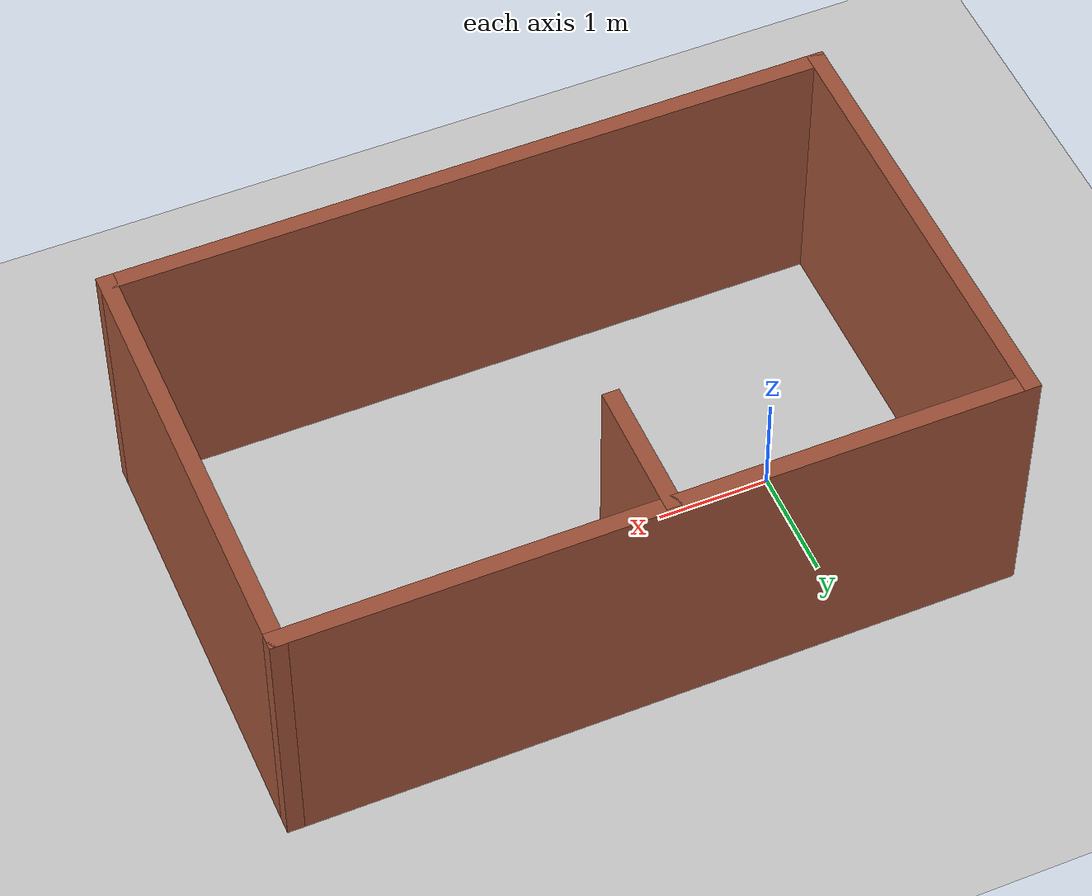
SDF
<?xml version="1.0" ?>
<!-- newworld.world 에서 convert_world 로 변환한 Gazebo Sim(Fortress) 월드 -->
<sdf version="1.7">
  <world name="default">

    <plugin filename="ignition-gazebo-physics-system"
            name="ignition::gazebo::systems::Physics"/>
    <plugin filename="ignition-gazebo-user-commands-system"
            name="ignition::gazebo::systems::UserCommands"/>
    <plugin filename="ignition-gazebo-scene-broadcaster-system"
            name="ignition::gazebo::systems::SceneBroadcaster"/>
    <!-- gpu_lidar 용. WSL2 에서는 ogre2 가 죽는 경우가 많아 ogre 사용 -->
    <plugin filename="ignition-gazebo-sensors-system"
            name="ignition::gazebo::systems::Sensors">
      <render_engine>ogre</render_engine>
    </plugin>
    <plugin filename="ignition-gazebo-imu-system"
            name="ignition::gazebo::systems::Imu"/>

    <physics name="1ms" type="ode">
      <max_step_size>0.001</max_step_size>
      <real_time_factor>1.0</real_time_factor>
    </physics>

    <scene>
      <ambient>0.4 0.4 0.4 1</ambient>
      <background>0.7 0.7 0.7 1</background>
      <shadows>false</shadows>
    </scene>

    <light name="sun" type="directional">
      <cast_shadows>true</cast_shadows>
      <pose>0 0 10 0 0 0</pose>
      <diffuse>0.8 0.8 0.8 1</diffuse>
      <specular>0.2 0.2 0.2 1</specular>
      <direction>-0.5 0.1 -0.9</direction>
    </light>

    <model name="ground_plane">
      <static>true</static>
      <link name="link">
        <collision name="collision">
          <geometry><plane><normal>0 0 1</normal><size>100 100</size></plane></geometry>
          <surface><friction><ode><mu>100</mu><mu2>50</mu2></ode></friction></surface>
        </collision>
        <visual name="visual">
          <geometry><plane><normal>0 0 1</normal><size>100 100</size></plane></geometry>
          <material><ambient>0.8 0.8 0.8 1</ambient><diffuse>0.8 0.8 0.8 1</diffuse></material>
        </visual>
      </link>
    </model>

    <model name="Untitled">
      <static>true</static>
      <link name="Wall_0">
        <pose>-1.40353 -0.277567 0 0 0 -1.5708</pose>
        <collision name="collision_0"><pose>0 0 1.25 0 -0 0</pose><geometry><box><size>4 0.15 2.5</size></box></geometry></collision>
        <visual name="visual_0"><pose>0 0 1.25 0 -0 0</pose><geometry><box><size>4 0.15 2.5</size></box></geometry><material><ambient>0.62 0.32 0.22 1</ambient><diffuse>0.62 0.32 0.22 1</diffuse></material></visual>
      </link>
      <link name="Wall_1">
        <pose>1.77147 -2.20257 0 0 -0 0</pose>
        <collision name="collision_0"><pose>0 0 1.25 0 -0 0</pose><geometry><box><size>6.5 0.15 2.5</size></box></geometry></collision>
        <visual name="visual_0"><pose>0 0 1.25 0 -0 0</pose><geometry><box><size>6.5 0.15 2.5</size></box></geometry><material><ambient>0.62 0.32 0.22 1</ambient><diffuse>0.62 0.32 0.22 1</diffuse></material></visual>
      </link>
      <link name="Wall_2">
        <pose>4.94646 -0.277567 0 0 -0 1.5708</pose>
        <collision name="collision_0"><pose>0 0 1.25 0 -0 0</pose><geometry><box><size>4 0.15 2.5</size></box></geometry></collision>
        <visual name="visual_0"><pose>0 0 1.25 0 -0 0</pose><geometry><box><size>4 0.15 2.5</size></box></geometry><material><ambient>0.62 0.32 0.22 1</ambient><diffuse>0.62 0.32 0.22 1</diffuse></material></visual>
      </link>
      <link name="Wall_3">
        <pose>1.77147 1.64743 0 0 -0 3.14159</pose>
        <collision name="collision_0"><pose>0 0 1.25 0 -0 0</pose><geometry><box><size>6.5 0.15 2.5</size></box></geometry></collision>
        <visual name="visual_0"><pose>0 0 1.25 0 -0 0</pose><geometry><box><size>6.5 0.15 2.5</size></box></geometry><material><ambient>0.62 0.32 0.22 1</ambient><diffuse>0.62 0.32 0.22 1</diffuse></material></visual>
      </link>
      <link name="Wall_5">
        <pose>1.67647 1.06743 0 0 0 -1.5708</pose>
        <collision name="collision_0"><pose>0 0 1.25 0 -0 0</pose><geometry><box><size>1.25 0.15 2.5</size></box></geometry></collision>
        <visual name="visual_0"><pose>0 0 1.25 0 -0 0</pose><geometry><box><size>1.25 0.15 2.5</size></box></geometry><material><ambient>0.62 0.32 0.22 1</ambient><diffuse>0.62 0.32 0.22 1</diffuse></material></visual>
      </link>
    </model>
  </world>
</sdf>
